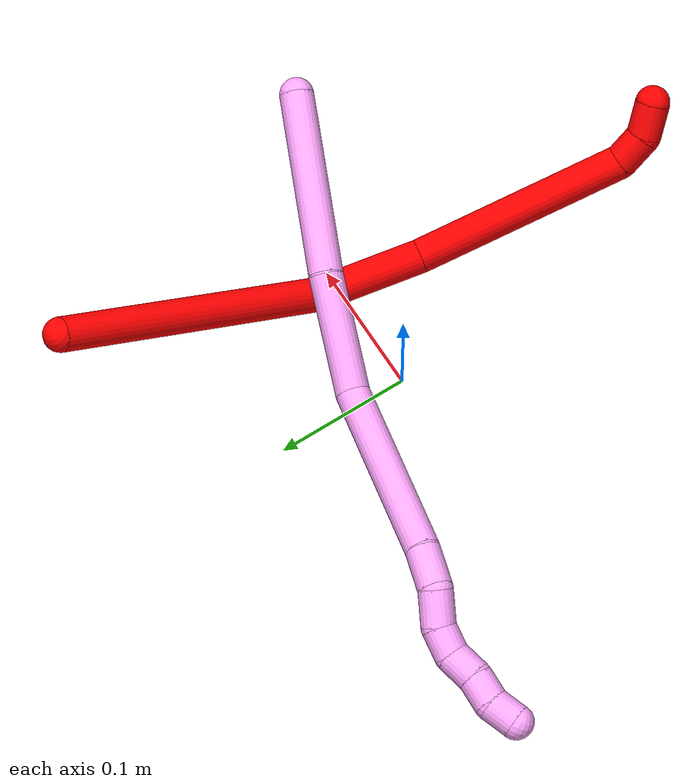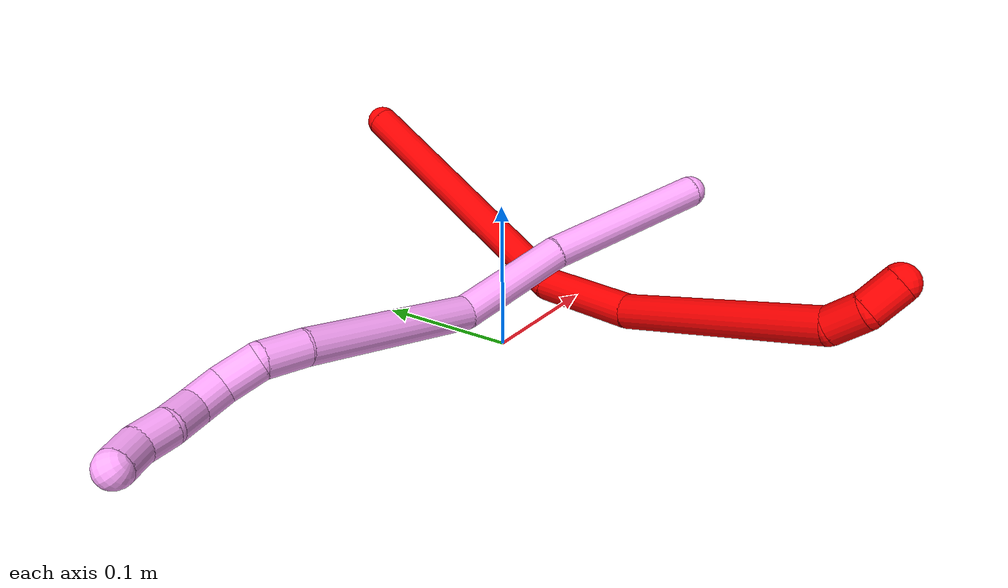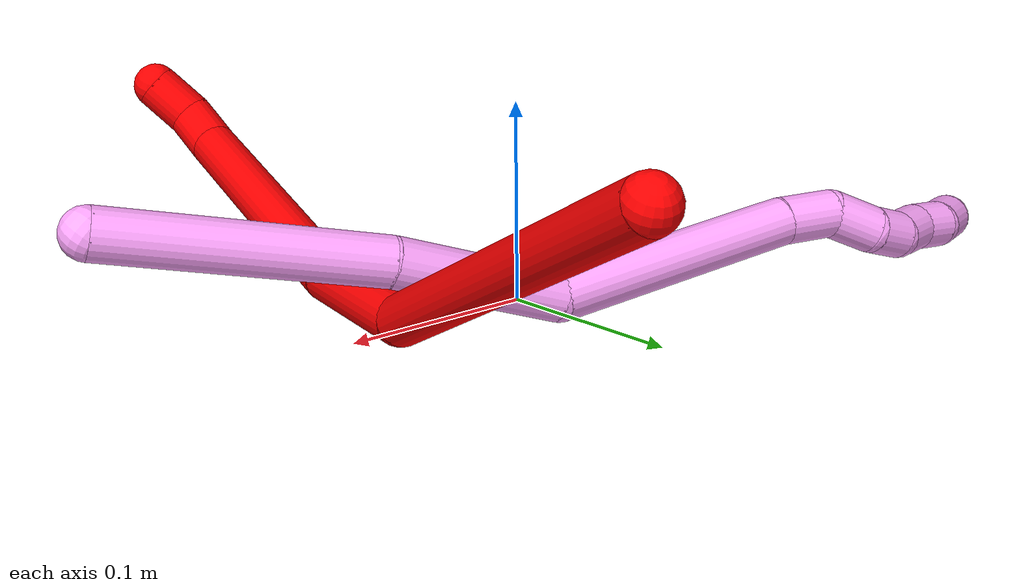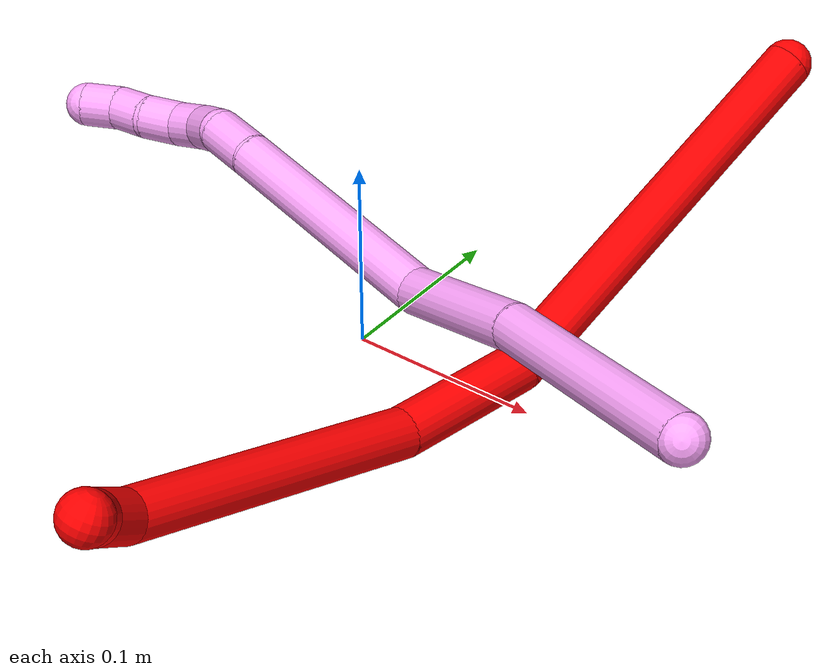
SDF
<sdf version="1.7">
 <world name="default">
  <model name="2">
   <static>0</static>
   <link name="2">
    <collision name="collision-cylinder-e_1_1_4">
     <pose>-0.01802 -0.060403 -0.085879 2.52862 -0.169968 -0.525929</pose>
     <geometry><cylinder><radius>0.0125</radius><length>0.213059</length></cylinder></geometry>
     <surface>
      <friction><ode><mu>1.16</mu><mu2>1.16</mu2><slip1>0</slip1><slip2>0</slip2></ode></friction>
      <contact><ode><kp>1e+06</kp><kd>1</kd><max_vel>0</max_vel><min_depth>0.001</min_depth></ode></contact>
     </surface>
    </collision>
    <visual name="visual-cylinder-e_1_1_4">
     <pose>-0.01802 -0.060403 -0.085879 2.52862 -0.169968 -0.525929</pose>
     <geometry><cylinder><radius>0.0125</radius><length>0.213059</length></cylinder></geometry>
     <material><ambient>1 0 0 1</ambient></material>
    </visual>
    <collision name="collision-cylinder-e_2_4_5">
     <pose>-0.048904 -0.152944 -0.18919 2.06778 -0.338332 -0.558876</pose>
     <geometry><cylinder><radius>0.0125</radius><length>0.077517</length></cylinder></geometry>
     <surface>
      <friction><ode><mu>1.16</mu><mu2>1.16</mu2><slip1>0</slip1><slip2>0</slip2></ode></friction>
      <contact><ode><kp>1e+06</kp><kd>1</kd><max_vel>0</max_vel><min_depth>0.001</min_depth></ode></contact>
     </surface>
    </collision>
    <visual name="visual-cylinder-e_2_4_5">
     <pose>-0.048904 -0.152944 -0.18919 2.06778 -0.338332 -0.558876</pose>
     <geometry><cylinder><radius>0.0125</radius><length>0.077517</length></cylinder></geometry>
     <material><ambient>1 0 0 1</ambient></material>
    </visual>
    <collision name="collision-cylinder-e_3_5_6">
     <pose>-0.093161 -0.255595 -0.225363 1.83058 -0.406323 -0.523523</pose>
     <geometry><cylinder><radius>0.0125</radius><length>0.158856</length></cylinder></geometry>
     <surface>
      <friction><ode><mu>1.16</mu><mu2>1.16</mu2><slip1>0</slip1><slip2>0</slip2></ode></friction>
      <contact><ode><kp>1e+06</kp><kd>1</kd><max_vel>0</max_vel><min_depth>0.001</min_depth></ode></contact>
     </surface>
    </collision>
    <visual name="visual-cylinder-e_3_5_6">
     <pose>-0.093161 -0.255595 -0.225363 1.83058 -0.406323 -0.523523</pose>
     <geometry><cylinder><radius>0.0125</radius><length>0.158856</length></cylinder></geometry>
     <material><ambient>1 0 0 1</ambient></material>
    </visual>
    <collision name="collision-cylinder-e_4_6_7">
     <pose>-0.127093 -0.338194 -0.241957 1.39495 -0.204046 -0.171162</pose>
     <geometry><cylinder><radius>0.0125</radius><length>0.025072</length></cylinder></geometry>
     <surface>
      <friction><ode><mu>1.16</mu><mu2>1.16</mu2><slip1>0</slip1><slip2>0</slip2></ode></friction>
      <contact><ode><kp>1e+06</kp><kd>1</kd><max_vel>0</max_vel><min_depth>0.001</min_depth></ode></contact>
     </surface>
    </collision>
    <visual name="visual-cylinder-e_4_6_7">
     <pose>-0.127093 -0.338194 -0.241957 1.39495 -0.204046 -0.171162</pose>
     <geometry><cylinder><radius>0.0125</radius><length>0.025072</length></cylinder></geometry>
     <material><ambient>1 0 0 1</ambient></material>
    </visual>
    <collision name="collision-cylinder-e_5_7_2">
     <pose>-0.127235 -0.361672 -0.234612 1.14279 0.189242 0.121884</pose>
     <geometry><cylinder><radius>0.0125</radius><length>0.025497</length></cylinder></geometry>
     <surface>
      <friction><ode><mu>1.16</mu><mu2>1.16</mu2><slip1>0</slip1><slip2>0</slip2></ode></friction>
      <contact><ode><kp>1e+06</kp><kd>1</kd><max_vel>0</max_vel><min_depth>0.001</min_depth></ode></contact>
     </surface>
    </collision>
    <visual name="visual-cylinder-e_5_7_2">
     <pose>-0.127235 -0.361672 -0.234612 1.14279 0.189242 0.121884</pose>
     <geometry><cylinder><radius>0.0125</radius><length>0.025497</length></cylinder></geometry>
     <material><ambient>1 0 0 1</ambient></material>
    </visual>
    <collision name="collision-sphere-2">
     <pose>-0.124837 -0.373064 -0.229416 0 -0 0</pose>
     <geometry><sphere><radius>0.0125</radius></sphere></geometry>
     <surface>
      <friction><ode><mu>1.16</mu><mu2>1.16</mu2><slip1>0</slip1><slip2>0</slip2></ode></friction>
      <contact><ode><kp>1e+06</kp><kd>1</kd><max_vel>0</max_vel><min_depth>0.001</min_depth></ode></contact>
     </surface>
    </collision>
    <visual name="visual-sphere-2">
     <pose>-0.124837 -0.373064 -0.229416 0 -0 0</pose>
     <geometry><sphere><radius>0.0125</radius></sphere></geometry>
     <material><ambient>1 0 0 1</ambient></material>
    </visual>
    <collision name="collision-sphere-7">
     <pose>-0.129634 -0.350281 -0.239809 0 -0 0</pose>
     <geometry><sphere><radius>0.0125</radius></sphere></geometry>
     <surface>
      <friction><ode><mu>1.16</mu><mu2>1.16</mu2><slip1>0</slip1><slip2>0</slip2></ode></friction>
      <contact><ode><kp>1e+06</kp><kd>1</kd><max_vel>0</max_vel><min_depth>0.001</min_depth></ode></contact>
     </surface>
    </collision>
    <visual name="visual-sphere-7">
     <pose>-0.129634 -0.350281 -0.239809 0 -0 0</pose>
     <geometry><sphere><radius>0.0125</radius></sphere></geometry>
     <material><ambient>1 0 0 1</ambient></material>
    </visual>
    <collision name="collision-sphere-6">
     <pose>-0.124553 -0.326108 -0.244105 0 -0 0</pose>
     <geometry><sphere><radius>0.0125</radius></sphere></geometry>
     <surface>
      <friction><ode><mu>1.16</mu><mu2>1.16</mu2><slip1>0</slip1><slip2>0</slip2></ode></friction>
      <contact><ode><kp>1e+06</kp><kd>1</kd><max_vel>0</max_vel><min_depth>0.001</min_depth></ode></contact>
     </surface>
    </collision>
    <visual name="visual-sphere-6">
     <pose>-0.124553 -0.326108 -0.244105 0 -0 0</pose>
     <geometry><sphere><radius>0.0125</radius></sphere></geometry>
     <material><ambient>1 0 0 1</ambient></material>
    </visual>
    <collision name="collision-sphere-5">
     <pose>-0.061768 -0.185082 -0.206622 0 -0 0</pose>
     <geometry><sphere><radius>0.0125</radius></sphere></geometry>
     <surface>
      <friction><ode><mu>1.16</mu><mu2>1.16</mu2><slip1>0</slip1><slip2>0</slip2></ode></friction>
      <contact><ode><kp>1e+06</kp><kd>1</kd><max_vel>0</max_vel><min_depth>0.001</min_depth></ode></contact>
     </surface>
    </collision>
    <visual name="visual-sphere-5">
     <pose>-0.061768 -0.185082 -0.206622 0 -0 0</pose>
     <geometry><sphere><radius>0.0125</radius></sphere></geometry>
     <material><ambient>1 0 0 1</ambient></material>
    </visual>
    <collision name="collision-sphere-1">
     <geometry><sphere><radius>0.0125</radius></sphere></geometry>
     <surface>
      <friction><ode><mu>1.16</mu><mu2>1.16</mu2><slip1>0</slip1><slip2>0</slip2></ode></friction>
      <contact><ode><kp>1e+06</kp><kd>1</kd><max_vel>0</max_vel><min_depth>0.001</min_depth></ode></contact>
     </surface>
    </collision>
    <visual name="visual-sphere-1">
     <geometry><sphere><radius>0.0125</radius></sphere></geometry>
     <material><ambient>1 0 0 1</ambient></material>
    </visual>
    <collision name="collision-sphere-4">
     <pose>-0.036039 -0.120806 -0.171759 0 -0 0</pose>
     <geometry><sphere><radius>0.0125</radius></sphere></geometry>
     <surface>
      <friction><ode><mu>1.16</mu><mu2>1.16</mu2><slip1>0</slip1><slip2>0</slip2></ode></friction>
      <contact><ode><kp>1e+06</kp><kd>1</kd><max_vel>0</max_vel><min_depth>0.001</min_depth></ode></contact>
     </surface>
    </collision>
    <visual name="visual-sphere-4">
     <pose>-0.036039 -0.120806 -0.171759 0 -0 0</pose>
     <geometry><sphere><radius>0.0125</radius></sphere></geometry>
     <material><ambient>1 0 0 1</ambient></material>
    </visual>
    <inertial>
     <pose>-0.05772 -0.166057 -0.161623 0 -0 0</pose>
     <mass>0.5</mass>
     <inertia>
      <ixx>0.000413</ixx>
      <ixy>0</ixy>
      <ixz>0</ixz>
      <iyy>-0.001165</iyy>
      <iyz>0</iyz>
      <izz>0.001071</izz>
     </inertia>
    </inertial>
   </link>
   <pose>0.117722 0.203709 0.105871 -0.416443 0.274735 0.166077</pose>
  </model>
  <model name="4">
   <static>0</static>
   <link name="4">
    <collision name="collision-cylinder-e_1_1_4">
     <pose>-0.02075 -0.039425 0.050538 0.662484 -0.313085 -0.108456</pose>
     <geometry><cylinder><radius>0.0125</radius><length>0.134744</length></cylinder></geometry>
     <surface>
      <friction><ode><mu>1.16</mu><mu2>1.16</mu2><slip1>0</slip1><slip2>0</slip2></ode></friction>
      <contact><ode><kp>1e+06</kp><kd>1</kd><max_vel>0</max_vel><min_depth>0.001</min_depth></ode></contact>
     </surface>
    </collision>
    <visual name="visual-cylinder-e_1_1_4">
     <pose>-0.02075 -0.039425 0.050538 0.662484 -0.313085 -0.108456</pose>
     <geometry><cylinder><radius>0.0125</radius><length>0.134744</length></cylinder></geometry>
     <material><ambient>1 0.65098 0.996078 1</ambient></material>
    </visual>
    <collision name="collision-cylinder-e_2_4_5">
     <pose>-0.059727 -0.10054 0.13403 0.582137 -0.432788 -0.131526</pose>
     <geometry><cylinder><radius>0.0125</radius><length>0.086917</length></cylinder></geometry>
     <surface>
      <friction><ode><mu>1.16</mu><mu2>1.16</mu2><slip1>0</slip1><slip2>0</slip2></ode></friction>
      <contact><ode><kp>1e+06</kp><kd>1</kd><max_vel>0</max_vel><min_depth>0.001</min_depth></ode></contact>
     </surface>
    </collision>
    <visual name="visual-cylinder-e_2_4_5">
     <pose>-0.059727 -0.10054 0.13403 0.582137 -0.432788 -0.131526</pose>
     <geometry><cylinder><radius>0.0125</radius><length>0.086917</length></cylinder></geometry>
     <material><ambient>1 0.65098 0.996078 1</ambient></material>
    </visual>
    <collision name="collision-cylinder-e_3_5_6">
     <pose>-0.098462 -0.178928 0.19787 1.07199 -0.30757 -0.183632</pose>
     <geometry><cylinder><radius>0.0125</radius><length>0.135485</length></cylinder></geometry>
     <surface>
      <friction><ode><mu>1.16</mu><mu2>1.16</mu2><slip1>0</slip1><slip2>0</slip2></ode></friction>
      <contact><ode><kp>1e+06</kp><kd>1</kd><max_vel>0</max_vel><min_depth>0.001</min_depth></ode></contact>
     </surface>
    </collision>
    <visual name="visual-cylinder-e_3_5_6">
     <pose>-0.098462 -0.178928 0.19787 1.07199 -0.30757 -0.183632</pose>
     <geometry><cylinder><radius>0.0125</radius><length>0.135485</length></cylinder></geometry>
     <material><ambient>1 0.65098 0.996078 1</ambient></material>
    </visual>
    <collision name="collision-cylinder-e_4_6_7">
     <pose>-0.123571 -0.247198 0.237488 0.924416 -0.30723 -0.153973</pose>
     <geometry><cylinder><radius>0.0125</radius><length>0.03042</length></cylinder></geometry>
     <surface>
      <friction><ode><mu>1.16</mu><mu2>1.16</mu2><slip1>0</slip1><slip2>0</slip2></ode></friction>
      <contact><ode><kp>1e+06</kp><kd>1</kd><max_vel>0</max_vel><min_depth>0.001</min_depth></ode></contact>
     </surface>
    </collision>
    <visual name="visual-cylinder-e_4_6_7">
     <pose>-0.123571 -0.247198 0.237488 0.924416 -0.30723 -0.153973</pose>
     <geometry><cylinder><radius>0.0125</radius><length>0.03042</length></cylinder></geometry>
     <material><ambient>1 0.65098 0.996078 1</ambient></material>
    </visual>
    <collision name="collision-cylinder-e_5_7_8">
     <pose>-0.132759 -0.263819 0.257486 0.421272 -0.355844 -0.076857</pose>
     <geometry><cylinder><radius>0.0125</radius><length>0.026341</length></cylinder></geometry>
     <surface>
      <friction><ode><mu>1.16</mu><mu2>1.16</mu2><slip1>0</slip1><slip2>0</slip2></ode></friction>
      <contact><ode><kp>1e+06</kp><kd>1</kd><max_vel>0</max_vel><min_depth>0.001</min_depth></ode></contact>
     </surface>
    </collision>
    <visual name="visual-cylinder-e_5_7_8">
     <pose>-0.132759 -0.263819 0.257486 0.421272 -0.355844 -0.076857</pose>
     <geometry><cylinder><radius>0.0125</radius><length>0.026341</length></cylinder></geometry>
     <material><ambient>1 0.65098 0.996078 1</ambient></material>
    </visual>
    <collision name="collision-cylinder-e_6_8_9">
     <pose>-0.14352 -0.274521 0.275272 0.714348 -0.620882 -0.238308</pose>
     <geometry><cylinder><radius>0.0125</radius><length>0.021222</length></cylinder></geometry>
     <surface>
      <friction><ode><mu>1.16</mu><mu2>1.16</mu2><slip1>0</slip1><slip2>0</slip2></ode></friction>
      <contact><ode><kp>1e+06</kp><kd>1</kd><max_vel>0</max_vel><min_depth>0.001</min_depth></ode></contact>
     </surface>
    </collision>
    <visual name="visual-cylinder-e_6_8_9">
     <pose>-0.14352 -0.274521 0.275272 0.714348 -0.620882 -0.238308</pose>
     <geometry><cylinder><radius>0.0125</radius><length>0.021222</length></cylinder></geometry>
     <material><ambient>1 0.65098 0.996078 1</ambient></material>
    </visual>
    <collision name="collision-cylinder-e_7_9_10">
     <pose>-0.157159 -0.287994 0.284546 1.2323 -0.733193 -0.530928</pose>
     <geometry><cylinder><radius>0.0125</radius><length>0.022311</length></cylinder></geometry>
     <surface>
      <friction><ode><mu>1.16</mu><mu2>1.16</mu2><slip1>0</slip1><slip2>0</slip2></ode></friction>
      <contact><ode><kp>1e+06</kp><kd>1</kd><max_vel>0</max_vel><min_depth>0.001</min_depth></ode></contact>
     </surface>
    </collision>
    <visual name="visual-cylinder-e_7_9_10">
     <pose>-0.157159 -0.287994 0.284546 1.2323 -0.733193 -0.530928</pose>
     <geometry><cylinder><radius>0.0125</radius><length>0.022311</length></cylinder></geometry>
     <material><ambient>1 0.65098 0.996078 1</ambient></material>
    </visual>
    <collision name="collision-cylinder-e_8_10_11">
     <pose>-0.170557 -0.303243 0.292254 0.982515 -0.586273 -0.320199</pose>
     <geometry><cylinder><radius>0.0125</radius><length>0.021443</length></cylinder></geometry>
     <surface>
      <friction><ode><mu>1.16</mu><mu2>1.16</mu2><slip1>0</slip1><slip2>0</slip2></ode></friction>
      <contact><ode><kp>1e+06</kp><kd>1</kd><max_vel>0</max_vel><min_depth>0.001</min_depth></ode></contact>
     </surface>
    </collision>
    <visual name="visual-cylinder-e_8_10_11">
     <pose>-0.170557 -0.303243 0.292254 0.982515 -0.586273 -0.320199</pose>
     <geometry><cylinder><radius>0.0125</radius><length>0.021443</length></cylinder></geometry>
     <material><ambient>1 0.65098 0.996078 1</ambient></material>
    </visual>
    <collision name="collision-cylinder-e_9_11_2">
     <pose>-0.184373 -0.31751 0.29881 1.34095 -0.843209 -0.683437</pose>
     <geometry><cylinder><radius>0.0125</radius><length>0.021116</length></cylinder></geometry>
     <surface>
      <friction><ode><mu>1.16</mu><mu2>1.16</mu2><slip1>0</slip1><slip2>0</slip2></ode></friction>
      <contact><ode><kp>1e+06</kp><kd>1</kd><max_vel>0</max_vel><min_depth>0.001</min_depth></ode></contact>
     </surface>
    </collision>
    <visual name="visual-cylinder-e_9_11_2">
     <pose>-0.184373 -0.31751 0.29881 1.34095 -0.843209 -0.683437</pose>
     <geometry><cylinder><radius>0.0125</radius><length>0.021116</length></cylinder></geometry>
     <material><ambient>1 0.65098 0.996078 1</ambient></material>
    </visual>
    <collision name="collision-sphere-2">
     <pose>-0.192258 -0.324347 0.30041 0 -0 0</pose>
     <geometry><sphere><radius>0.0125</radius></sphere></geometry>
     <surface>
      <friction><ode><mu>1.16</mu><mu2>1.16</mu2><slip1>0</slip1><slip2>0</slip2></ode></friction>
      <contact><ode><kp>1e+06</kp><kd>1</kd><max_vel>0</max_vel><min_depth>0.001</min_depth></ode></contact>
     </surface>
    </collision>
    <visual name="visual-sphere-2">
     <pose>-0.192258 -0.324347 0.30041 0 -0 0</pose>
     <geometry><sphere><radius>0.0125</radius></sphere></geometry>
     <material><ambient>1 0.65098 0.996078 1</ambient></material>
    </visual>
    <collision name="collision-sphere-11">
     <pose>-0.176489 -0.310673 0.297211 0 -0 0</pose>
     <geometry><sphere><radius>0.0125</radius></sphere></geometry>
     <surface>
      <friction><ode><mu>1.16</mu><mu2>1.16</mu2><slip1>0</slip1><slip2>0</slip2></ode></friction>
      <contact><ode><kp>1e+06</kp><kd>1</kd><max_vel>0</max_vel><min_depth>0.001</min_depth></ode></contact>
     </surface>
    </collision>
    <visual name="visual-sphere-11">
     <pose>-0.176489 -0.310673 0.297211 0 -0 0</pose>
     <geometry><sphere><radius>0.0125</radius></sphere></geometry>
     <material><ambient>1 0.65098 0.996078 1</ambient></material>
    </visual>
    <collision name="collision-sphere-10">
     <pose>-0.164625 -0.295813 0.287298 0 -0 0</pose>
     <geometry><sphere><radius>0.0125</radius></sphere></geometry>
     <surface>
      <friction><ode><mu>1.16</mu><mu2>1.16</mu2><slip1>0</slip1><slip2>0</slip2></ode></friction>
      <contact><ode><kp>1e+06</kp><kd>1</kd><max_vel>0</max_vel><min_depth>0.001</min_depth></ode></contact>
     </surface>
    </collision>
    <visual name="visual-sphere-10">
     <pose>-0.164625 -0.295813 0.287298 0 -0 0</pose>
     <geometry><sphere><radius>0.0125</radius></sphere></geometry>
     <material><ambient>1 0.65098 0.996078 1</ambient></material>
    </visual>
    <collision name="collision-sphere-9">
     <pose>-0.149693 -0.280176 0.281793 0 -0 0</pose>
     <geometry><sphere><radius>0.0125</radius></sphere></geometry>
     <surface>
      <friction><ode><mu>1.16</mu><mu2>1.16</mu2><slip1>0</slip1><slip2>0</slip2></ode></friction>
      <contact><ode><kp>1e+06</kp><kd>1</kd><max_vel>0</max_vel><min_depth>0.001</min_depth></ode></contact>
     </surface>
    </collision>
    <visual name="visual-sphere-9">
     <pose>-0.149693 -0.280176 0.281793 0 -0 0</pose>
     <geometry><sphere><radius>0.0125</radius></sphere></geometry>
     <material><ambient>1 0.65098 0.996078 1</ambient></material>
    </visual>
    <collision name="collision-sphere-4">
     <pose>-0.0415 -0.078849 0.101077 0 -0 0</pose>
     <geometry><sphere><radius>0.0125</radius></sphere></geometry>
     <surface>
      <friction><ode><mu>1.16</mu><mu2>1.16</mu2><slip1>0</slip1><slip2>0</slip2></ode></friction>
      <contact><ode><kp>1e+06</kp><kd>1</kd><max_vel>0</max_vel><min_depth>0.001</min_depth></ode></contact>
     </surface>
    </collision>
    <visual name="visual-sphere-4">
     <pose>-0.0415 -0.078849 0.101077 0 -0 0</pose>
     <geometry><sphere><radius>0.0125</radius></sphere></geometry>
     <material><ambient>1 0.65098 0.996078 1</ambient></material>
    </visual>
    <collision name="collision-sphere-1">
     <geometry><sphere><radius>0.0125</radius></sphere></geometry>
     <surface>
      <friction><ode><mu>1.16</mu><mu2>1.16</mu2><slip1>0</slip1><slip2>0</slip2></ode></friction>
      <contact><ode><kp>1e+06</kp><kd>1</kd><max_vel>0</max_vel><min_depth>0.001</min_depth></ode></contact>
     </surface>
    </collision>
    <visual name="visual-sphere-1">
     <geometry><sphere><radius>0.0125</radius></sphere></geometry>
     <material><ambient>1 0.65098 0.996078 1</ambient></material>
    </visual>
    <collision name="collision-sphere-8">
     <pose>-0.137348 -0.268867 0.268752 0 -0 0</pose>
     <geometry><sphere><radius>0.0125</radius></sphere></geometry>
     <surface>
      <friction><ode><mu>1.16</mu><mu2>1.16</mu2><slip1>0</slip1><slip2>0</slip2></ode></friction>
      <contact><ode><kp>1e+06</kp><kd>1</kd><max_vel>0</max_vel><min_depth>0.001</min_depth></ode></contact>
     </surface>
    </collision>
    <visual name="visual-sphere-8">
     <pose>-0.137348 -0.268867 0.268752 0 -0 0</pose>
     <geometry><sphere><radius>0.0125</radius></sphere></geometry>
     <material><ambient>1 0.65098 0.996078 1</ambient></material>
    </visual>
    <collision name="collision-sphere-5">
     <pose>-0.077954 -0.122231 0.166984 0 -0 0</pose>
     <geometry><sphere><radius>0.0125</radius></sphere></geometry>
     <surface>
      <friction><ode><mu>1.16</mu><mu2>1.16</mu2><slip1>0</slip1><slip2>0</slip2></ode></friction>
      <contact><ode><kp>1e+06</kp><kd>1</kd><max_vel>0</max_vel><min_depth>0.001</min_depth></ode></contact>
     </surface>
    </collision>
    <visual name="visual-sphere-5">
     <pose>-0.077954 -0.122231 0.166984 0 -0 0</pose>
     <geometry><sphere><radius>0.0125</radius></sphere></geometry>
     <material><ambient>1 0.65098 0.996078 1</ambient></material>
    </visual>
    <collision name="collision-sphere-6">
     <pose>-0.118971 -0.235624 0.228756 0 -0 0</pose>
     <geometry><sphere><radius>0.0125</radius></sphere></geometry>
     <surface>
      <friction><ode><mu>1.16</mu><mu2>1.16</mu2><slip1>0</slip1><slip2>0</slip2></ode></friction>
      <contact><ode><kp>1e+06</kp><kd>1</kd><max_vel>0</max_vel><min_depth>0.001</min_depth></ode></contact>
     </surface>
    </collision>
    <visual name="visual-sphere-6">
     <pose>-0.118971 -0.235624 0.228756 0 -0 0</pose>
     <geometry><sphere><radius>0.0125</radius></sphere></geometry>
     <material><ambient>1 0.65098 0.996078 1</ambient></material>
    </visual>
    <collision name="collision-sphere-7">
     <pose>-0.128171 -0.258771 0.24622 0 -0 0</pose>
     <geometry><sphere><radius>0.0125</radius></sphere></geometry>
     <surface>
      <friction><ode><mu>1.16</mu><mu2>1.16</mu2><slip1>0</slip1><slip2>0</slip2></ode></friction>
      <contact><ode><kp>1e+06</kp><kd>1</kd><max_vel>0</max_vel><min_depth>0.001</min_depth></ode></contact>
     </surface>
    </collision>
    <visual name="visual-sphere-7">
     <pose>-0.128171 -0.258771 0.24622 0 -0 0</pose>
     <geometry><sphere><radius>0.0125</radius></sphere></geometry>
     <material><ambient>1 0.65098 0.996078 1</ambient></material>
    </visual>
    <inertial>
     <pose>-0.085373 -0.156441 0.168083 0 -0 0</pose>
     <mass>0.5</mass>
     <inertia>
      <ixx>0.000376</ixx>
      <ixy>0</ixy>
      <ixz>0</ixz>
      <iyy>0.000244</iyy>
      <iyz>0</iyz>
      <izz>0.00052</izz>
     </inertia>
    </inertial>
   </link>
   <pose>0.206101 -0.042261 0.063168 -2.26584 -0.545656 0.909091</pose>
  </model>
 </world>
</sdf>
